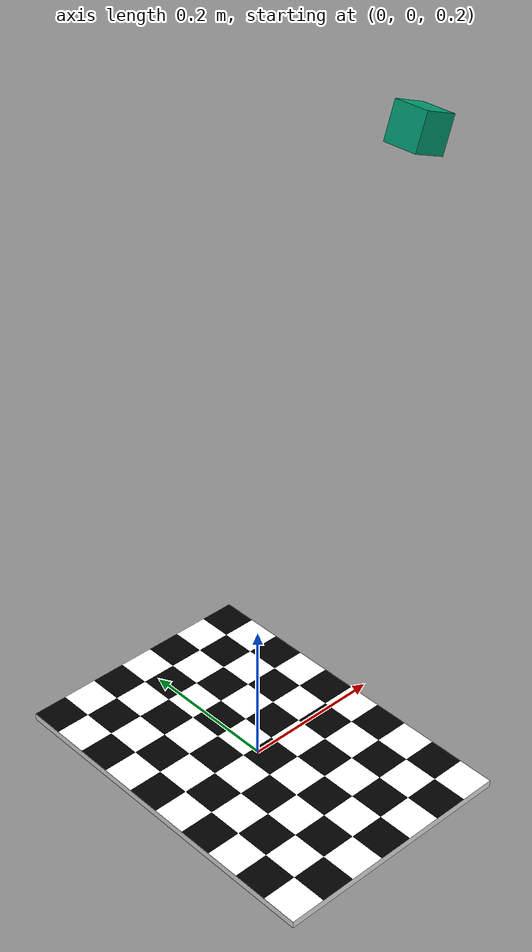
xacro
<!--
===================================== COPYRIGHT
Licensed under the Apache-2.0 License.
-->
<?xml version="1.0" ?>

<robot name="calibration_urdf" xmlns:xacro="http://ros.org/wiki/xacro">

  <!-- World: LINK -->
  <link name="world"/>

  <!-- CHESSBOARD -->
  <link name="chessboard">
    <visual>
      <origin xyz="0.0 0.0 0.0" rpy="0 0 0" />
      <geometry>
        <mesh filename="file://$(find r3m_opecalibration)/meshes/objects/chessboard.dae" scale="1 1 1" />
      </geometry>
    </visual>
    <collision>
      <origin xyz="0.0 0.0 0.0" rpy="0 0 0" />
      <geometry>
        <mesh filename="file://$(find r3m_opecalibration)/meshes/objects/chessboard.dae" scale="1 1 1" />
      </geometry>
    </collision>
    <inertial>
      <mass value="100.0"/>
      <inertia ixx="1.0" ixy="1.0" ixz="0.1" iyy="0.0" iyz="0.0" izz="0.0" />
    </inertial>
  </link>
  <joint name="world-chessboard-fixed" type="fixed">
    <parent link="world"/>
    <child link="chessboard"/>

    <origin xyz="0.0 0.0 0.2" rpy="0.0 0.0 0.0" />

  </joint>

  <!-- CAMERA -->
  <link name="camera_link">
    <collision>
      <origin xyz="0 0 0" rpy="0 0 0"/>
      <geometry>
        <box size="0.05 0.05 0.05"/>
      </geometry>
    </collision>
    <visual>
      <origin xyz="0 0 0" rpy="0 0 0"/>
      <geometry>
        <box size="0.05 0.05 0.05"/>
      </geometry>
    </visual>
    <inertial>
      <mass value="1.0" />
      <origin xyz="0 0 0" rpy="0 0 0"/>
      <inertia ixx="0.0" ixy="0.0" ixz="0.0" iyy="0.0" iyz="0.0" izz="0.0" />
    </inertial>
  </link>
  <joint name="camera_joint" type="fixed">
    <origin xyz="0.25 0.0 1.0" rpy="0 1.23 3.1416"/>
    <parent link="world"/>
    <child link="camera_link"/>
  </joint>

  <!-- PARAMS FOR -> lenovoFHD_gazebo -->
  <gazebo reference="camera_link">
    <sensor name="camera" type="camera">
      <update_rate>30</update_rate>
      <camera name="head">
        <horizontal_fov>1.22</horizontal_fov>
        <image>
          <width>1920</width>
          <height>1080</height>
          <format>R8G8B8</format>
        </image>
        <clip>
          <near>0.02</near>
          <far>300</far>
        </clip>
        <noise>
          <type>gaussian</type>
          <mean>0.0</mean>
          <stddev>0.007</stddev>
        </noise>
      </camera>
      <plugin filename="libgazebo_ros_camera.so" name="camera_controller">
        <robotNamespace/>
        <alwaysOn>true</alwaysOn>
        <updateRate>0.0</updateRate>
        <cameraName>camera</cameraName>
        <imageTopicName>image_raw</imageTopicName>
        <cameraInfoTopicName>camera_info</cameraInfoTopicName>
        <frameName>camera</frameName>
        <hackBaseline>0.07</hackBaseline>
      </plugin>
    </sensor>
  </gazebo>

</robot>
